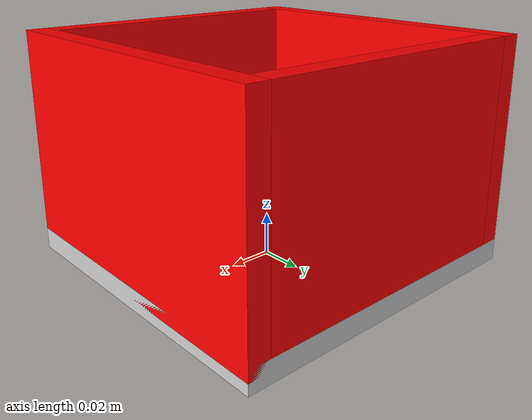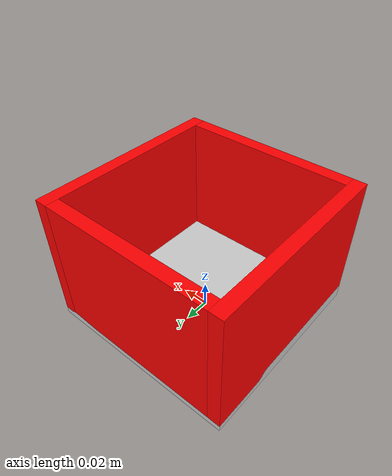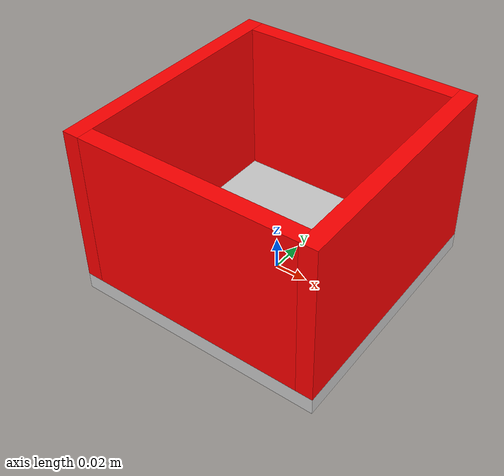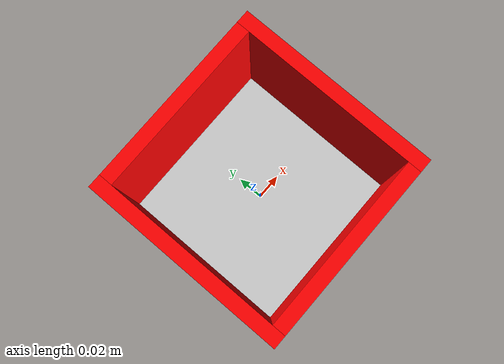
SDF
<?xml version="1.0" ?>
<sdf version="1.7">
  <model name="storage_bin">
    <static>true</static>
    <link name="bin_link">
      <!-- Bottom -->
      <collision name="bottom_collision">
        <pose>0 0 0.005 0 0 0</pose>
        <geometry>
          <box>
            <size>0.15 0.15 0.01</size>
          </box>
        </geometry>
      </collision>
      <visual name="bottom_visual">
        <pose>0 0 0.005 0 0 0</pose>
        <geometry>
          <box>
            <size>0.15 0.15 0.01</size>
          </box>
        </geometry>
        <material>
          <ambient>0.8 0.8 0.8 1</ambient>
          <diffuse>0.8 0.8 0.8 1</diffuse>
          <specular>0.1 0.1 0.1 1</specular>
        </material>
      </visual>

      <!-- Front Wall -->
      <collision name="front_wall_collision">
        <pose>0.07 0 0.055 0 0 0</pose>
        <geometry>
          <box>
            <size>0.01 0.15 0.10</size>
          </box>
        </geometry>
      </collision>
      <visual name="front_wall_visual">
        <pose>0.07 0 0.055 0 0 0</pose>
        <geometry>
          <box>
            <size>0.01 0.15 0.10</size>
          </box>
        </geometry>
        <material>
          <ambient>1.0 0.0 0.0 1</ambient>
          <diffuse>1.0 0.0 0.0 1</diffuse>
          <specular>0.2 0.2 0.2 1</specular>
        </material>
      </visual>

      <!-- Back Wall -->
      <collision name="back_wall_collision">
        <pose>-0.07 0 0.055 0 0 0</pose>
        <geometry>
          <box>
            <size>0.01 0.15 0.10</size>
          </box>
        </geometry>
      </collision>
      <visual name="back_wall_visual">
        <pose>-0.07 0 0.055 0 0 0</pose>
        <geometry>
          <box>
            <size>0.01 0.15 0.10</size>
          </box>
        </geometry>
        <material>
          <ambient>1.0 0.0 0.0 1</ambient>
          <diffuse>1.0 0.0 0.0 1</diffuse>
          <specular>0.2 0.2 0.2 1</specular>
        </material>
      </visual>

      <!-- Left Wall -->
      <collision name="left_wall_collision">
        <pose>0 0.07 0.055 0 0 0</pose>
        <geometry>
          <box>
            <size>0.13 0.01 0.10</size>
          </box>
        </geometry>
      </collision>
      <visual name="left_wall_visual">
        <pose>0 0.07 0.055 0 0 0</pose>
        <geometry>
          <box>
            <size>0.13 0.01 0.10</size>
          </box>
        </geometry>
        <material>
          <ambient>1.0 0.0 0.0 1</ambient>
          <diffuse>1.0 0.0 0.0 1</diffuse>
          <specular>0.2 0.2 0.2 1</specular>
        </material>
      </visual>

      <!-- Right Wall -->
      <collision name="right_wall_collision">
        <pose>0 -0.07 0.055 0 0 0</pose>
        <geometry>
          <box>
            <size>0.13 0.01 0.10</size>
          </box>
        </geometry>
      </collision>
      <visual name="right_wall_visual">
        <pose>0 -0.07 0.055 0 0 0</pose>
        <geometry>
          <box>
            <size>0.13 0.01 0.10</size>
          </box>
        </geometry>
        <material>
          <ambient>1.0 0.0 0.0 1</ambient>
          <diffuse>1.0 0.0 0.0 1</diffuse>
          <specular>0.2 0.2 0.2 1</specular>
        </material>
      </visual>
    </link>
  </model>
</sdf>
